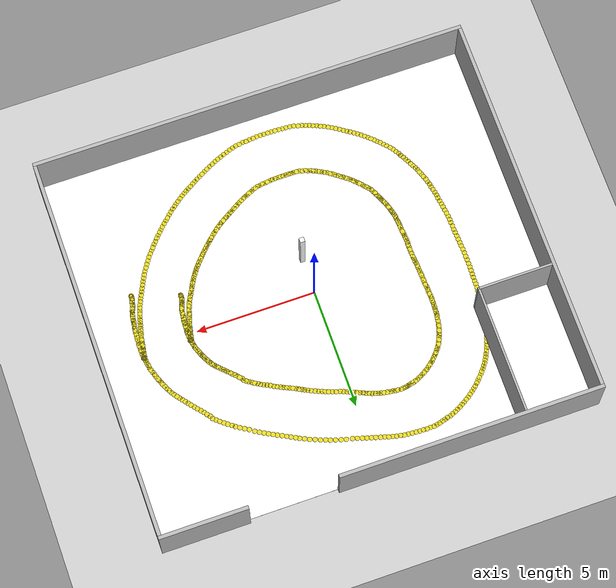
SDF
<?xml version="1.0" ?>

<sdf version="1.4">
  <world name="default">

    <include>
      <uri>model://ground_plane</uri>
    </include>

    <include>
      <uri>model://sun</uri>
    </include>

    <include>
      <uri>model://highbay</uri>
    </include>

    <include>
      <uri>model://loop_1</uri>
    </include>

  </world>
</sdf>
